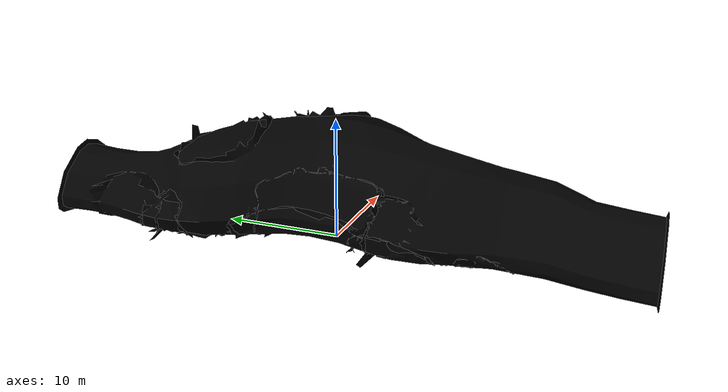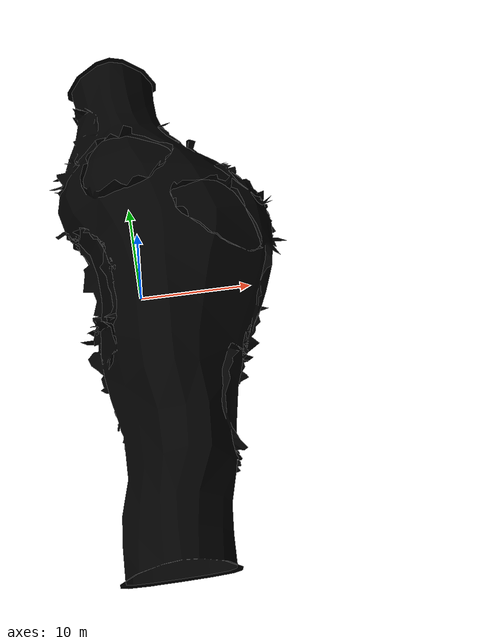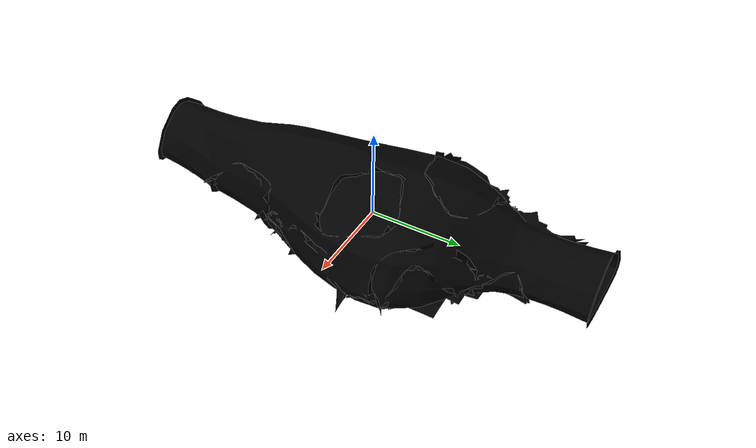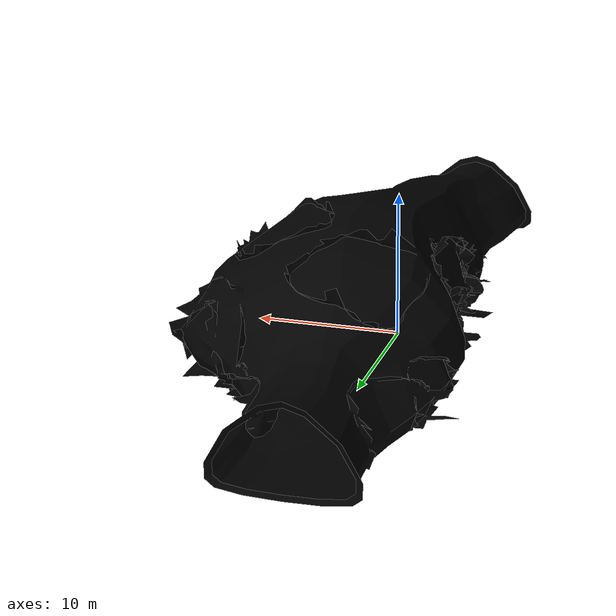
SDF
<sdf version="1.6">
  <model name="Cave Straight Lights Type A">
    <include>
      <name>cave_straight_type_a</name>
      <uri>model://Cave Straight Type A</uri>
    </include>
    <static>true</static>
    <link name="lights">
      <light name="Omni011" type="spot">
        <pose>3.41296 1.14569 5.11374 0 0 0</pose>
        <diffuse>0 0 0 1</diffuse>
        <specular>0 0 0 1</specular>
        <attenuation>
          <range>20</range>
          <linear>0.2</linear>
          <constant>1.0</constant>
          <quadratic>0.01</quadratic>
        </attenuation>
        <spot>
          <inner_angle>2.0</inner_angle>
          <outer_angle>3.1</outer_angle>
          <falloff>1.2</falloff>
        </spot>
        <cast_shadows>false</cast_shadows>
      </light>
    </link>
  </model>
</sdf>

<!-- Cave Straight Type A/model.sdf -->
<sdf version="1.6">
  <model name="Cave Straight Type A">
    <static>true</static>
    <link name="base_link">
      <collision name="collision">
        <pose>0 0 0 0 0 0</pose>
        <geometry>
          <mesh>
            <uri>model://Cave Straight Type A/meshes/straight.dae</uri>
            <scale>1.0 1.0 1.0</scale>
          </mesh>
        </geometry>
      </collision>
      <visual name="Gravel_visual">
        <geometry>
          <mesh>
            <uri>model://Cave Straight Type A/meshes/straight.dae</uri>
            <submesh>
              <name>Gravel</name>
              <center>false</center>
            </submesh>
          </mesh>
        </geometry>
        <material>
          <diffuse>0 0 0 1</diffuse>
          <specular>0 0 0 1</specular>
          <pbr>
            <metal>
              <albedo_map>model://Cave Straight Type A/materials/textures/Gravel_Albedo.png</albedo_map>
              <normal_map>model://Cave Straight Type A/materials/textures/Gravel_Normal.png</normal_map>
              <roughness_map>model://Cave Straight Type A/materials/textures/Gravel_Roughness.png</roughness_map>
            </metal>
          </pbr>

          <script>
            <uri>model://Cave Straight Type A/materials/scripts/</uri>
            <uri>model://Cave Straight Type A/materials/textures/</uri>
            <name>CaveTile/Gravel_Diffuse</name>
          </script>
        </material>
      </visual>
      <visual name="RockPile_visual">
        <geometry>
          <mesh>
            <uri>model://Cave Straight Type A/meshes/straight.dae</uri>
            <submesh>
              <name>RockPile</name>
              <center>false</center>
            </submesh>
          </mesh>
        </geometry>
        <material>
          <diffuse>0 0 0 1</diffuse>
          <specular>0 0 0 1</specular>
          <pbr>
            <metal>
              <albedo_map>model://Cave Straight Type A/materials/textures/RockPile_Albedo.png</albedo_map>
              <normal_map>model://Cave Straight Type A/materials/textures/RockPile_Normal.png</normal_map>
              <roughness_map>model://Cave Straight Type A/materials/textures/RockPile_Roughness.png</roughness_map>
            </metal>
          </pbr>

          <script>
            <uri>model://Cave Straight Type A/materials/scripts/</uri>
            <uri>model://Cave Straight Type A/materials/textures/</uri>
            <name>CaveTile/RockPile_Diffuse</name>
          </script>
        </material>
      </visual>
      <visual name="StriatedRock_visual">
        <geometry>
          <mesh>
            <uri>model://Cave Straight Type A/meshes/straight.dae</uri>
            <submesh>
              <name>StriatedRock</name>
              <center>false</center>
            </submesh>
          </mesh>
        </geometry>
        <material>
          <diffuse>0 0 0 1</diffuse>
          <specular>0 0 0 1</specular>
          <pbr>
            <metal>
              <albedo_map>model://Cave Straight Type A/materials/textures/StriatedRock_Albedo.png</albedo_map>
              <normal_map>model://Cave Straight Type A/materials/textures/StriatedRock_Normal.png</normal_map>
              <roughness_map>model://Cave Straight Type A/materials/textures/StriatedRock_Roughness.png</roughness_map>
            </metal>
          </pbr>

          <script>
            <uri>model://Cave Straight Type A/materials/scripts/</uri>
            <uri>model://Cave Straight Type A/materials/textures/</uri>
            <name>CaveTile/StriatedRock_Diffuse</name>
          </script>
        </material>
      </visual>
      <visual name="CaveWall_visual">
        <geometry>
          <mesh>
            <uri>model://Cave Straight Type A/meshes/straight.dae</uri>
            <submesh>
              <name>CaveWall</name>
              <center>false</center>
            </submesh>
          </mesh>
        </geometry>
        <material>
          <diffuse>0 0 0 1</diffuse>
          <specular>0 0 0 1</specular>
          <pbr>
            <metal>
              <albedo_map>model://Cave Straight Type A/materials/textures/CaveWall_Albedo.png</albedo_map>
              <normal_map>model://Cave Straight Type A/materials/textures/CaveWall_Normal.png</normal_map>
              <roughness_map>model://Cave Straight Type A/materials/textures/CaveWall_Roughness.png</roughness_map>
            </metal>
          </pbr>

          <script>
            <uri>model://Cave Straight Type A/materials/scripts/</uri>
            <uri>model://Cave Straight Type A/materials/textures/</uri>
            <name>CaveTile/CaveWall_Diffuse</name>
          </script>
        </material>
      </visual>
    </link>
  </model>
</sdf>
